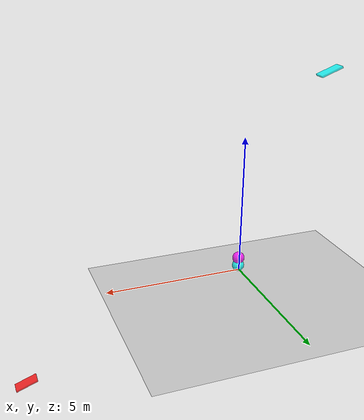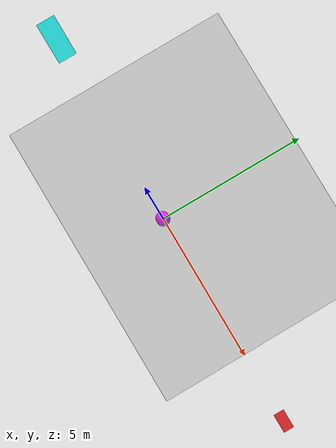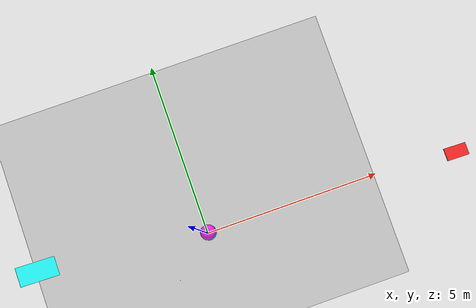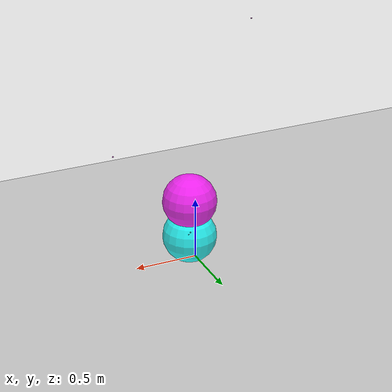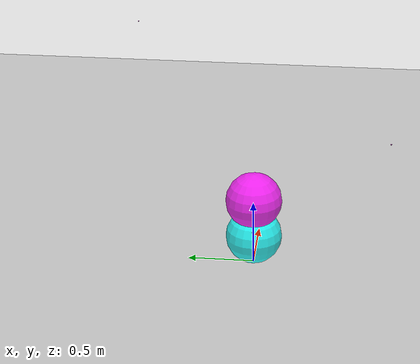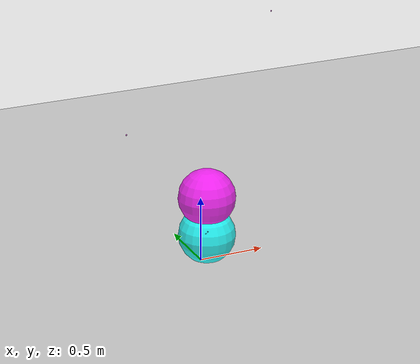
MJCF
<mujoco>
  <option density="1.204" viscosity="1.8e-5" integrator="implicit"/>

  <visual>
    <global elevation="-10"/>
  </visual>

  <default>
    <tendon limited="true" width="0.003" rgba="1 1 1 1"/>
    <geom friction=".2"/>
    <default class="weight">
      <geom rgba=".8 .4 .8 1"/>
      <site rgba=".8 .4 .8 1"/>
    </default>
  </default>

  <asset>
    <texture name="grid" type="2d" builtin="checker" width="512" height="512" rgb2="0 0 0" rgb1="1 1 1"/>
    <material name="grid" texture="grid" texrepeat="2 2" texuniform="true" reflectance="0"/>
  </asset>

  <worldbody>
    <geom name="ground" type="plane" size="5 5 .05" pos="0 0 -.5" material="grid"/>

    <geom name="ramp1" type="box" size=".4 .2 .03" pos="8 0 -3" euler="0 20 0" rgba="255 0 0 0.8"/>

    <geom name="ramp2" type="box" size=".4 .2 .03" pos="-3 0 7" euler="0 20 0" rgba="0 11 255 0.8"/>

    <body name="ball1" childclass="weight" pos=".05 0 .2" >
      <freejoint/>
      <light pos="1 0 3" dir="-1 0 -3" mode="trackcom"/>
      <light pos="-1 0 3" dir="1 0 -3" mode="trackcom"/>
      <!-- The mass of the weight was chosen to be slightly bigger than the total buoyancy of the balloons. -->
      <geom name="ball1" type="sphere" size="0.215 0.215 0.215" mass="1.0347" rgba="0 37 255 0.8"/>
      <site name="weight1" pos=" .013  .013 .013" size="0.005"/>
      <site name="weight2" pos="-.013 -.013 .013" size="0.005"/>
    </body>

    <body name="ball2" childclass="weight" pos=".05 0 .5" >
      <freejoint/>
      <light pos="1 0 3" dir="-1 0 -3" mode="trackcom"/>
      <light pos="-1 0 3" dir="1 0 -3" mode="trackcom"/>
      <!-- The mass of the weight was chosen to be slightly bigger than the total buoyancy of the balloons. -->
      <geom name="ball2" type="sphere" size="0.215 0.215 0.215" mass="1.0347" rgba="255 0 255 0.8"/>
      <site name="weight4" pos=" 1.013  1.013 1.013" size="0.005"/>
      <site name="weight5" pos="-1.013 -1.013 1.013" size="0.005"/>
    </body>

    <!-- The gravcomp value of 7.2 is the ratio of air and helium densities at room temperature. -->

  </worldbody>

</mujoco>
